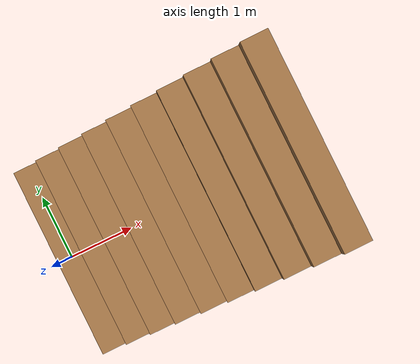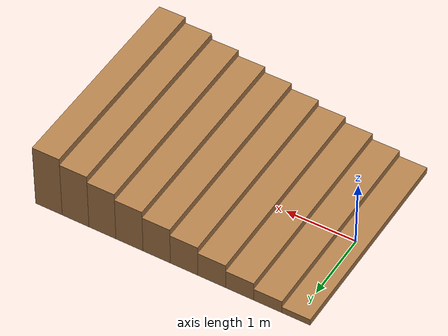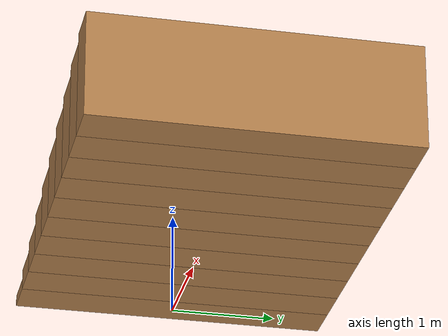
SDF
<?xml version="1.0" ?>
<sdf version="1.4">
  <model name="stairs_talos_2">
    <static>1</static>
    <link name="link">
            <collision name="stairs_talos_2_collision0">
        <pose>0.0 0.0 0.05 0.0 0.0 0.0</pose>
        <geometry>
          <box>
            <size>0.4 3.0 0.1</size>
          </box>
        </geometry>
        <surface>
          <bounce />
          <friction>
            <ode>
              <mu>0.7</mu>
              <mu2>0.72</mu2>
            </ode>
          </friction>
          <contact>
            <ode>
              <kp>10000000.0</kp>
              <kd>1.0</kd>
              <min_depth>0.0</min_depth>
              <max_vel>0.0</max_vel>
            </ode>
          </contact>
        </surface>
      </collision>
      <visual name="stairs_talos_2_visual0">
        <pose>0.0 0.0 0.05 0.0 0.0 0.0</pose>
        <geometry>
          <box>
            <size>0.4 3.0 0.1</size>
          </box>
        </geometry>
        <material>
          <script>
            <uri>file://media/materials/scripts/gazebo.material</uri>
            <name>Gazebo/Wood</name>
          </script>
        </material>
      </visual>
      <collision name="stairs_talos_2_collision1">
        <pose>0.4 0.0 0.1 0.0 0.0 0.0</pose>
        <geometry>
          <box>
            <size>0.4 3.0 0.2</size>
          </box>
        </geometry>
        <surface>
          <bounce />
          <friction>
            <ode>
              <mu>0.7</mu>
              <mu2>0.72</mu2>
            </ode>
          </friction>
          <contact>
            <ode>
              <kp>10000000.0</kp>
              <kd>1.0</kd>
              <min_depth>0.0</min_depth>
              <max_vel>0.0</max_vel>
            </ode>
          </contact>
        </surface>
      </collision>
      <visual name="stairs_talos_2_visual1">
        <pose>0.4 0.0 0.1 0.0 0.0 0.0</pose>
        <geometry>
          <box>
            <size>0.4 3.0 0.2</size>
          </box>
        </geometry>
        <material>
          <script>
            <uri>file://media/materials/scripts/gazebo.material</uri>
            <name>Gazebo/Wood</name>
          </script>
        </material>
      </visual>
      <collision name="stairs_talos_2_collision2">
        <pose>0.8 0.0 0.15 0.0 0.0 0.0</pose>
        <geometry>
          <box>
            <size>0.4 3.0 0.3</size>
          </box>
        </geometry>
        <surface>
          <bounce />
          <friction>
            <ode>
              <mu>0.7</mu>
              <mu2>0.72</mu2>
            </ode>
          </friction>
          <contact>
            <ode>
              <kp>10000000.0</kp>
              <kd>1.0</kd>
              <min_depth>0.0</min_depth>
              <max_vel>0.0</max_vel>
            </ode>
          </contact>
        </surface>
      </collision>
      <visual name="stairs_talos_2_visual2">
        <pose>0.8 0.0 0.15 0.0 0.0 0.0</pose>
        <geometry>
          <box>
            <size>0.4 3.0 0.3</size>
          </box>
        </geometry>
        <material>
          <script>
            <uri>file://media/materials/scripts/gazebo.material</uri>
            <name>Gazebo/Wood</name>
          </script>
        </material>
      </visual>
      <collision name="stairs_talos_2_collision3">
        <pose>1.2 0.0 0.2 0.0 0.0 0.0</pose>
        <geometry>
          <box>
            <size>0.4 3.0 0.4</size>
          </box>
        </geometry>
        <surface>
          <bounce />
          <friction>
            <ode>
              <mu>0.7</mu>
              <mu2>0.72</mu2>
            </ode>
          </friction>
          <contact>
            <ode>
              <kp>10000000.0</kp>
              <kd>1.0</kd>
              <min_depth>0.0</min_depth>
              <max_vel>0.0</max_vel>
            </ode>
          </contact>
        </surface>
      </collision>
      <visual name="stairs_talos_2_visual3">
        <pose>1.2 0.0 0.2 0.0 0.0 0.0</pose>
        <geometry>
          <box>
            <size>0.4 3.0 0.4</size>
          </box>
        </geometry>
        <material>
          <script>
            <uri>file://media/materials/scripts/gazebo.material</uri>
            <name>Gazebo/Wood</name>
          </script>
        </material>
      </visual>
      <collision name="stairs_talos_2_collision4">
        <pose>1.6 0.0 0.25 0.0 0.0 0.0</pose>
        <geometry>
          <box>
            <size>0.4 3.0 0.5</size>
          </box>
        </geometry>
        <surface>
          <bounce />
          <friction>
            <ode>
              <mu>0.7</mu>
              <mu2>0.72</mu2>
            </ode>
          </friction>
          <contact>
            <ode>
              <kp>10000000.0</kp>
              <kd>1.0</kd>
              <min_depth>0.0</min_depth>
              <max_vel>0.0</max_vel>
            </ode>
          </contact>
        </surface>
      </collision>
      <visual name="stairs_talos_2_visual4">
        <pose>1.6 0.0 0.25 0.0 0.0 0.0</pose>
        <geometry>
          <box>
            <size>0.4 3.0 0.5</size>
          </box>
        </geometry>
        <material>
          <script>
            <uri>file://media/materials/scripts/gazebo.material</uri>
            <name>Gazebo/Wood</name>
          </script>
        </material>
      </visual>
      <collision name="stairs_talos_2_collision5">
        <pose>2.0 0.0 0.3 0.0 0.0 0.0</pose>
        <geometry>
          <box>
            <size>0.4 3.0 0.6</size>
          </box>
        </geometry>
        <surface>
          <bounce />
          <friction>
            <ode>
              <mu>0.7</mu>
              <mu2>0.72</mu2>
            </ode>
          </friction>
          <contact>
            <ode>
              <kp>10000000.0</kp>
              <kd>1.0</kd>
              <min_depth>0.0</min_depth>
              <max_vel>0.0</max_vel>
            </ode>
          </contact>
        </surface>
      </collision>
      <visual name="stairs_talos_2_visual5">
        <pose>2.0 0.0 0.3 0.0 0.0 0.0</pose>
        <geometry>
          <box>
            <size>0.4 3.0 0.6</size>
          </box>
        </geometry>
        <material>
          <script>
            <uri>file://media/materials/scripts/gazebo.material</uri>
            <name>Gazebo/Wood</name>
          </script>
        </material>
      </visual>
      <collision name="stairs_talos_2_collision6">
        <pose>2.4 0.0 0.35 0.0 0.0 0.0</pose>
        <geometry>
          <box>
            <size>0.4 3.0 0.7</size>
          </box>
        </geometry>
        <surface>
          <bounce />
          <friction>
            <ode>
              <mu>0.7</mu>
              <mu2>0.72</mu2>
            </ode>
          </friction>
          <contact>
            <ode>
              <kp>10000000.0</kp>
              <kd>1.0</kd>
              <min_depth>0.0</min_depth>
              <max_vel>0.0</max_vel>
            </ode>
          </contact>
        </surface>
      </collision>
      <visual name="stairs_talos_2_visual6">
        <pose>2.4 0.0 0.35 0.0 0.0 0.0</pose>
        <geometry>
          <box>
            <size>0.4 3.0 0.7</size>
          </box>
        </geometry>
        <material>
          <script>
            <uri>file://media/materials/scripts/gazebo.material</uri>
            <name>Gazebo/Wood</name>
          </script>
        </material>
      </visual>
      <collision name="stairs_talos_2_collision7">
        <pose>2.8 0.0 0.4 0.0 0.0 0.0</pose>
        <geometry>
          <box>
            <size>0.4 3.0 0.8</size>
          </box>
        </geometry>
        <surface>
          <bounce />
          <friction>
            <ode>
              <mu>0.7</mu>
              <mu2>0.72</mu2>
            </ode>
          </friction>
          <contact>
            <ode>
              <kp>10000000.0</kp>
              <kd>1.0</kd>
              <min_depth>0.0</min_depth>
              <max_vel>0.0</max_vel>
            </ode>
          </contact>
        </surface>
      </collision>
      <visual name="stairs_talos_2_visual7">
        <pose>2.8 0.0 0.4 0.0 0.0 0.0</pose>
        <geometry>
          <box>
            <size>0.4 3.0 0.8</size>
          </box>
        </geometry>
        <material>
          <script>
            <uri>file://media/materials/scripts/gazebo.material</uri>
            <name>Gazebo/Wood</name>
          </script>
        </material>
      </visual>
      <collision name="stairs_talos_2_collision8">
        <pose>3.2 0.0 0.45 0.0 0.0 0.0</pose>
        <geometry>
          <box>
            <size>0.4 3.0 0.9</size>
          </box>
        </geometry>
        <surface>
          <bounce />
          <friction>
            <ode>
              <mu>0.7</mu>
              <mu2>0.72</mu2>
            </ode>
          </friction>
          <contact>
            <ode>
              <kp>10000000.0</kp>
              <kd>1.0</kd>
              <min_depth>0.0</min_depth>
              <max_vel>0.0</max_vel>
            </ode>
          </contact>
        </surface>
      </collision>
      <visual name="stairs_talos_2_visual8">
        <pose>3.2 0.0 0.45 0.0 0.0 0.0</pose>
        <geometry>
          <box>
            <size>0.4 3.0 0.9</size>
          </box>
        </geometry>
        <material>
          <script>
            <uri>file://media/materials/scripts/gazebo.material</uri>
            <name>Gazebo/Wood</name>
          </script>
        </material>
      </visual>
      <collision name="stairs_talos_2_collision9">
        <pose>3.6 0.0 0.5 0.0 0.0 0.0</pose>
        <geometry>
          <box>
            <size>0.4 3.0 1.0</size>
          </box>
        </geometry>
        <surface>
          <bounce />
          <friction>
            <ode>
              <mu>0.7</mu>
              <mu2>0.72</mu2>
            </ode>
          </friction>
          <contact>
            <ode>
              <kp>10000000.0</kp>
              <kd>1.0</kd>
              <min_depth>0.0</min_depth>
              <max_vel>0.0</max_vel>
            </ode>
          </contact>
        </surface>
      </collision>
      <visual name="stairs_talos_2_visual9">
        <pose>3.6 0.0 0.5 0.0 0.0 0.0</pose>
        <geometry>
          <box>
            <size>0.4 3.0 1.0</size>
          </box>
        </geometry>
        <material>
          <script>
            <uri>file://media/materials/scripts/gazebo.material</uri>
            <name>Gazebo/Wood</name>
          </script>
        </material>
      </visual>

      <velocity_decay>
        <linear>0.000000</linear>
        <angular>0.000000</angular>
      </velocity_decay>
      <self_collide>0</self_collide>
      <kinematic>0</kinematic>
      <gravity>1</gravity>
    </link>
  </model>
</sdf>
